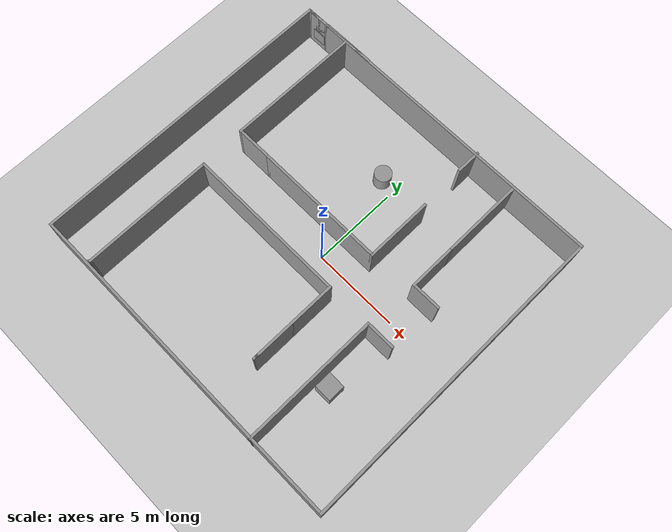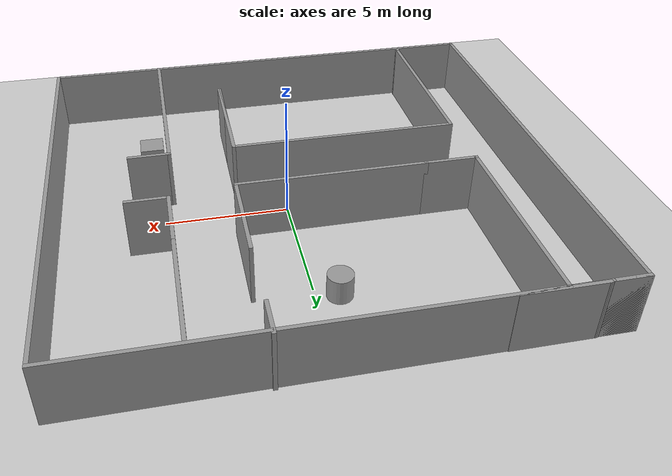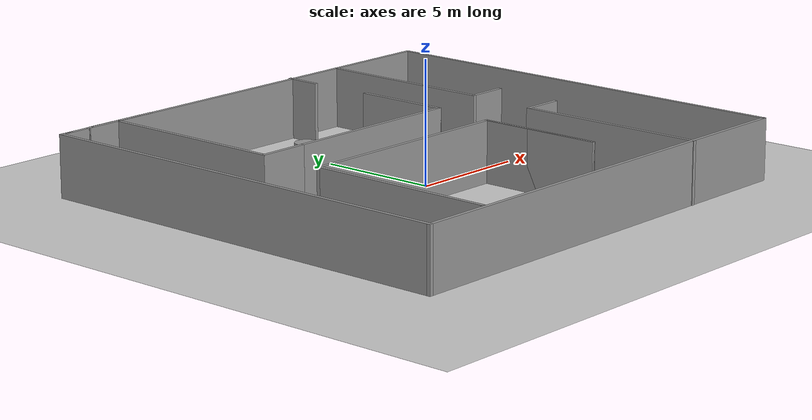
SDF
<sdf version="1.7">
 <world name="default">
  <light name="sun" type="directional">
   <pose>0 0 10 0 -0 0</pose>
   <diffuse>0.8 0.8 0.8 1</diffuse>
   <specular>0.2 0.2 0.2 1</specular>
   <attenuation>
    <range>1000</range>
    <constant>0.9</constant>
    <linear>0.01</linear>
    <quadratic>0.001</quadratic>
   </attenuation>
   <direction>-0.5 0.1 -0.9</direction>
   <spot><inner_angle>0</inner_angle><outer_angle>0</outer_angle><falloff>0</falloff></spot>
  </light>
  <model name="ground_plane">
   <static>1</static>
   <link name="link">
    <collision name="collision">
     <geometry><plane><normal>0 0 1</normal><size>100 100</size></plane></geometry>
     <surface><friction><ode><mu>100</mu><mu2>50</mu2></ode></friction></surface>
    </collision>
    <visual name="visual">
     <cast_shadows>0</cast_shadows>
     <geometry><plane><normal>0 0 1</normal><size>100 100</size></plane></geometry>
     <material>
      <script><uri>file://media/materials/scripts/gazebo.material</uri><name>Gazebo/Grey</name></script>
     </material>
    </visual>
   </link>
  </model>
  <gravity>0 0 -9.8</gravity>
  <magnetic_field>6e-06 2.3e-05 -4.2e-05</magnetic_field>
  <atmosphere type="adiabatic"/>
  <physics type="ode">
   <max_step_size>0.001</max_step_size>
   <real_time_factor>1</real_time_factor>
   <real_time_update_rate>1000</real_time_update_rate>
  </physics>
  <scene><ambient>0.4 0.4 0.4 1</ambient><background>0.7 0.7 0.7 1</background><shadows>1</shadows></scene>
  <audio><device>default</device></audio>
  <spherical_coordinates>
   <surface_model>EARTH_WGS84</surface_model>
   <latitude_deg>0</latitude_deg>
   <longitude_deg>0</longitude_deg>
   <elevation>0</elevation>
   <heading_deg>0</heading_deg>
  </spherical_coordinates>
  <model name="labroom">
   <pose>-0.522275 0.009464 0 0 -0 0</pose>
   <link name="Wall_11">
    <collision name="Wall_11_Collision">
     <geometry><box><size>3 0.15 2.5</size></box></geometry>
     <pose>0 0 1.25 0 -0 0</pose>
    </collision>
    <visual name="Wall_11_Visual">
     <pose>0 0 1.25 0 -0 0</pose>
     <geometry><box><size>3 0.15 2.5</size></box></geometry>
     <material>
      <script><uri>file://media/materials/scripts/gazebo.material</uri><name>Gazebo/Grey</name></script>
      <ambient>1 1 1 1</ambient>
     </material>
     <meta><layer>0</layer></meta>
    </visual>
    <pose>-8.375 9.14288 0 0 -0 0</pose>
   </link>
   <link name="Wall_12">
    <collision name="Wall_12_Collision">
     <geometry><box><size>8 0.15 2.5</size></box></geometry>
     <pose>0 0 1.25 0 -0 0</pose>
    </collision>
    <visual name="Wall_12_Visual">
     <pose>0 0 1.25 0 -0 0</pose>
     <geometry><box><size>8 0.15 2.5</size></box></geometry>
     <material>
      <script><uri>file://media/materials/scripts/gazebo.material</uri><name>Gazebo/Grey</name></script>
      <ambient>1 1 1 1</ambient>
     </material>
     <meta><layer>0</layer></meta>
    </visual>
    <pose>-6.95 5.21788 0 0 -0 -1.5708</pose>
   </link>
   <link name="Wall_13">
    <collision name="Wall_13_Collision">
     <geometry><box><size>2.25 0.15 2.5</size></box></geometry>
     <pose>0 0 1.25 0 -0 0</pose>
    </collision>
    <visual name="Wall_13_Visual">
     <pose>0 0 1.25 0 -0 0</pose>
     <geometry><box><size>2.25 0.15 2.5</size></box></geometry>
     <material>
      <script><uri>file://media/materials/scripts/gazebo.material</uri><name>Gazebo/Grey</name></script>
      <ambient>1 1 1 1</ambient>
     </material>
     <meta><layer>0</layer></meta>
    </visual>
    <pose>-5.9 1.29288 0 0 -0 0</pose>
   </link>
   <link name="Wall_14">
    <collision name="Wall_14_Collision">
     <geometry><box><size>7.75 0.15 2.5</size></box></geometry>
     <pose>0 0 1.25 0 -0 0</pose>
    </collision>
    <visual name="Wall_14_Visual">
     <pose>0 0 1.25 0 -0 0</pose>
     <geometry><box><size>7.75 0.15 2.5</size></box></geometry>
     <material>
      <script><uri>file://media/materials/scripts/gazebo.material</uri><name>Gazebo/Grey</name></script>
      <ambient>1 1 1 1</ambient>
     </material>
     <meta><layer>0</layer></meta>
    </visual>
    <pose>-1.05 1.29288 0 0 -0 0</pose>
   </link>
   <link name="Wall_15">
    <collision name="Wall_15_Collision">
     <geometry><box><size>4 0.15 2.5</size></box></geometry>
     <pose>0 0 1.25 0 -0 0</pose>
    </collision>
    <visual name="Wall_15_Visual">
     <pose>0 0 1.25 0 -0 0</pose>
     <geometry><box><size>4 0.15 2.5</size></box></geometry>
     <material>
      <script><uri>file://media/materials/scripts/gazebo.material</uri><name>Gazebo/Grey</name></script>
      <ambient>1 1 1 1</ambient>
     </material>
     <meta><layer>0</layer></meta>
    </visual>
    <pose>2.75 3.21788 0 0 -0 1.5708</pose>
   </link>
   <link name="Wall_17">
    <collision name="Wall_17_Collision">
     <geometry><box><size>1.5 0.15 2.5</size></box></geometry>
     <pose>0 0 1.25 0 -0 0</pose>
    </collision>
    <visual name="Wall_17_Visual">
     <pose>0 0 1.25 0 -0 0</pose>
     <geometry><box><size>1.5 0.15 2.5</size></box></geometry>
     <material>
      <script><uri>file://media/materials/scripts/gazebo.material</uri><name>Gazebo/Grey</name></script>
      <ambient>1 1 1 1</ambient>
     </material>
     <meta><layer>0</layer></meta>
    </visual>
    <pose>2.66692 8.55975 0 0 -0 -1.5708</pose>
   </link>
   <link name="Wall_19">
    <collision name="Wall_19_Collision">
     <geometry><box><size>5.25 0.15 2.5</size></box></geometry>
     <pose>0 0 1.25 0 -0 0</pose>
    </collision>
    <visual name="Wall_19_Visual">
     <pose>0 0 1.25 0 -0 0</pose>
     <geometry><box><size>5.25 0.15 2.5</size></box></geometry>
     <material>
      <script><uri>file://media/materials/scripts/gazebo.material</uri><name>Gazebo/Grey</name></script>
      <ambient>1 1 1 1</ambient>
     </material>
     <meta><layer>0</layer></meta>
    </visual>
    <pose>2.47453 -3.96669 0 0 -0 -1.5708</pose>
   </link>
   <link name="Wall_20">
    <collision name="Wall_20_Collision">
     <geometry><box><size>5.25 0.15 2.5</size></box></geometry>
     <pose>0 0 1.25 0 -0 0</pose>
    </collision>
    <visual name="Wall_20_Visual">
     <pose>0 0 1.25 0 -0 0</pose>
     <geometry><box><size>5.25 0.15 2.5</size></box></geometry>
     <material>
      <script><uri>file://media/materials/scripts/gazebo.material</uri><name>Gazebo/Grey</name></script>
      <ambient>1 1 1 1</ambient>
     </material>
     <meta><layer>0</layer></meta>
    </visual>
    <pose>2.47453 -3.96669 0 0 -0 1.5708</pose>
   </link>
   <link name="Wall_21">
    <collision name="Wall_21_Collision">
     <geometry><box><size>9.5 0.15 2.5</size></box></geometry>
     <pose>0 0 1.25 0 -0 0</pose>
    </collision>
    <visual name="Wall_21_Visual">
     <pose>0 0 1.25 0 -0 0</pose>
     <geometry><box><size>9.5 0.15 2.5</size></box></geometry>
     <material>
      <script><uri>file://media/materials/scripts/gazebo.material</uri><name>Gazebo/Grey</name></script>
      <ambient>1 1 1 1</ambient>
     </material>
     <meta><layer>0</layer></meta>
    </visual>
    <pose>-2.20047 -1.41669 0 0 -0 3.14159</pose>
   </link>
   <link name="Wall_22">
    <collision name="Wall_22_Collision">
     <geometry><box><size>7.75 0.15 2.5</size></box></geometry>
     <pose>0 0 1.25 0 -0 0</pose>
    </collision>
    <visual name="Wall_22_Visual">
     <pose>0 0 1.25 0 -0 0</pose>
     <geometry><box><size>7.75 0.15 2.5</size></box></geometry>
     <material>
      <script><uri>file://media/materials/scripts/gazebo.material</uri><name>Gazebo/Grey</name></script>
      <ambient>1 1 1 1</ambient>
     </material>
     <meta><layer>0</layer></meta>
    </visual>
    <pose>-6.87547 -5.21669 0 0 -0 -1.5708</pose>
   </link>
   <link name="Wall_23">
    <collision name="Wall_23_Collision">
     <geometry><box><size>0.25 0.15 2.5</size></box></geometry>
     <pose>0 0 1.25 0 -0 0</pose>
    </collision>
    <visual name="Wall_23_Visual">
     <pose>0 0 1.25 0 -0 0</pose>
     <geometry><box><size>0.25 0.15 2.5</size></box></geometry>
     <material>
      <script><uri>file://media/materials/scripts/gazebo.material</uri><name>Gazebo/Grey</name></script>
      <ambient>1 1 1 1</ambient>
     </material>
     <meta><layer>0</layer></meta>
    </visual>
    <pose>-6.90047 -9.06 0 0 -0 -2.0944</pose>
   </link>
   <link name="Wall_25">
    <collision name="Wall_25_Collision">
     <geometry><box><size>5 0.15 2.5</size></box></geometry>
     <pose>0 0 1.25 0 -0 0</pose>
    </collision>
    <visual name="Wall_25_Visual">
     <pose>0 0 1.25 0 -0 0</pose>
     <geometry><box><size>5 0.15 2.5</size></box></geometry>
     <material>
      <script><uri>file://media/materials/scripts/gazebo.material</uri><name>Gazebo/Grey</name></script>
      <ambient>1 1 1 1</ambient>
     </material>
     <meta><layer>0</layer></meta>
    </visual>
    <pose>5.30792 6.66983 0 0 -0 -1.5708</pose>
   </link>
   <link name="Wall_26">
    <collision name="Wall_26_Collision">
     <geometry><box><size>2.75 0.15 2.5</size></box></geometry>
     <pose>0 0 1.25 0 -0 0</pose>
    </collision>
    <visual name="Wall_26_Visual">
     <pose>0 0 1.25 0 -0 0</pose>
     <geometry><box><size>2.75 0.15 2.5</size></box></geometry>
     <material>
      <script><uri>file://media/materials/scripts/gazebo.material</uri><name>Gazebo/Grey</name></script>
      <ambient>1 1 1 1</ambient>
     </material>
     <meta><layer>0</layer></meta>
    </visual>
    <pose>5.30792 2.94483 0 0 -0 -1.5708</pose>
   </link>
   <link name="Wall_27">
    <collision name="Wall_27_Collision">
     <geometry><box><size>1.75 0.15 2.5</size></box></geometry>
     <pose>0 0 1.25 0 -0 0</pose>
    </collision>
    <visual name="Wall_27_Visual">
     <pose>0 0 1.25 0 -0 0</pose>
     <geometry><box><size>1.75 0.15 2.5</size></box></geometry>
     <material>
      <script><uri>file://media/materials/scripts/gazebo.material</uri><name>Gazebo/Grey</name></script>
      <ambient>1 1 1 1</ambient>
     </material>
     <meta><layer>0</layer></meta>
    </visual>
    <pose>6.10792 1.64483 0 0 -0 0</pose>
   </link>
   <link name="Wall_29">
    <collision name="Wall_29_Collision">
     <geometry><box><size>8 0.15 2.5</size></box></geometry>
     <pose>0 0 1.25 0 -0 0</pose>
    </collision>
    <visual name="Wall_29_Visual">
     <pose>0 0 1.25 0 -0 0</pose>
     <geometry><box><size>8 0.15 2.5</size></box></geometry>
     <material>
      <script><uri>file://media/materials/scripts/gazebo.material</uri><name>Gazebo/Grey</name></script>
      <ambient>1 1 1 1</ambient>
     </material>
     <meta><layer>0</layer></meta>
    </visual>
    <pose>5.09804 -5.30975 0 0 -0 1.5708</pose>
   </link>
   <link name="Wall_3">
    <collision name="Wall_3_Collision">
     <geometry><box><size>19.5 0.15 2.5</size></box></geometry>
     <pose>0 0 1.25 0 -0 0</pose>
    </collision>
    <visual name="Wall_3_Visual">
     <pose>0 0 1.25 0 -0 0</pose>
     <geometry><box><size>19.5 0.15 2.5</size></box></geometry>
     <material>
      <script><uri>file://media/materials/scripts/gazebo.material</uri><name>Gazebo/Grey</name></script>
      <ambient>1 1 1 1</ambient>
     </material>
     <meta><layer>0</layer></meta>
    </visual>
    <pose>0.125 9.14288 0 0 -0 0</pose>
   </link>
   <link name="Wall_30">
    <collision name="Wall_30_Collision">
     <geometry><box><size>1.75 0.15 2.5</size></box></geometry>
     <pose>0 0 1.25 0 -0 0</pose>
    </collision>
    <visual name="Wall_30_Visual">
     <pose>0 0 1.25 0 -0 0</pose>
     <geometry><box><size>1.75 0.15 2.5</size></box></geometry>
     <material>
      <script><uri>file://media/materials/scripts/gazebo.material</uri><name>Gazebo/Grey</name></script>
      <ambient>1 1 1 1</ambient>
     </material>
     <meta><layer>0</layer></meta>
    </visual>
    <pose>5.89804 -1.38475 0 0 -0 0</pose>
   </link>
   <link name="Wall_4">
    <collision name="Wall_4_Collision">
     <geometry><box><size>18.5 0.15 2.5</size></box></geometry>
     <pose>0 0 1.25 0 -0 0</pose>
    </collision>
    <visual name="Wall_4_Visual">
     <pose>0 0 1.25 0 -0 0</pose>
     <geometry><box><size>18.5 0.15 2.5</size></box></geometry>
     <material>
      <script><uri>file://media/materials/scripts/gazebo.material</uri><name>Gazebo/Grey</name></script>
      <ambient>1 1 1 1</ambient>
     </material>
     <meta><layer>0</layer></meta>
    </visual>
    <pose>9.8 -0.032124 0 0 -0 -1.5708</pose>
   </link>
   <link name="Wall_5">
    <collision name="Wall_5_Collision">
     <geometry><box><size>19.75 0.15 2.5</size></box></geometry>
     <pose>0 0 1.25 0 -0 0</pose>
    </collision>
    <visual name="Wall_5_Visual">
     <pose>0 0 1.25 0 -0 0</pose>
     <geometry><box><size>19.75 0.15 2.5</size></box></geometry>
     <material>
      <script><uri>file://media/materials/scripts/gazebo.material</uri><name>Gazebo/Grey</name></script>
      <ambient>1 1 1 1</ambient>
     </material>
     <meta><layer>0</layer></meta>
    </visual>
    <pose>0 -9.20712 0 0 -0 3.14159</pose>
   </link>
   <link name="Wall_6">
    <collision name="Wall_6_Collision">
     <geometry><box><size>18.5 0.15 2.5</size></box></geometry>
     <pose>0 0 1.25 0 -0 0</pose>
    </collision>
    <visual name="Wall_6_Visual">
     <pose>0 0 1.25 0 -0 0</pose>
     <geometry><box><size>18.5 0.15 2.5</size></box></geometry>
     <material>
      <script><uri>file://media/materials/scripts/gazebo.material</uri><name>Gazebo/Grey</name></script>
      <ambient>1 1 1 1</ambient>
     </material>
     <meta><layer>0</layer></meta>
    </visual>
    <pose>-9.8 -0.032124 0 0 -0 1.5708</pose>
   </link>
   <link name="Wall_7">
    <collision name="Wall_7_Collision">
     <geometry><box><size>1.5 0.15 2.5</size></box></geometry>
     <pose>0 0 1.25 0 -0 0</pose>
    </collision>
    <visual name="Wall_7_Visual">
     <pose>0 0 1.25 0 -0 0</pose>
     <geometry><box><size>1.5 0.15 2.5</size></box></geometry>
     <material>
      <script><uri>file://media/materials/scripts/gazebo.material</uri><name>Gazebo/Grey</name></script>
      <ambient>1 1 1 1</ambient>
     </material>
     <meta><layer>0</layer></meta>
    </visual>
    <pose>-9.125 9.14288 0 0 -0 0</pose>
   </link>
   <link name="Wall_8">
    <collision name="Wall_8_Collision">
     <geometry><box><size>0.25 0.15 2.5</size></box></geometry>
     <pose>0 0 1.25 0 -0 0</pose>
    </collision>
    <visual name="Wall_8_Visual">
     <pose>0 0 1.25 0 -0 0</pose>
     <geometry><box><size>0.25 0.15 2.5</size></box></geometry>
     <material>
      <script><uri>file://media/materials/scripts/gazebo.material</uri><name>Gazebo/Grey</name></script>
      <ambient>1 1 1 1</ambient>
     </material>
     <meta><layer>0</layer></meta>
    </visual>
    <pose>-8.4017 9.15582 0 0 -0 0.261799</pose>
   </link>
   <link name="Wall_9">
    <collision name="Wall_9_Collision">
     <geometry><box><size>3.25 0.15 2.5</size></box></geometry>
     <pose>0 0 1.25 0 -0 0</pose>
    </collision>
    <visual name="Wall_9_Visual">
     <pose>0 0 1.25 0 -0 0</pose>
     <geometry><box><size>3.25 0.15 2.5</size></box></geometry>
     <material>
      <script><uri>file://media/materials/scripts/gazebo.material</uri><name>Gazebo/Grey</name></script>
      <ambient>1 1 1 1</ambient>
     </material>
     <meta><layer>0</layer></meta>
    </visual>
    <pose>-6.80341 9.16876 0 0 -0 0</pose>
   </link>
   <link name="Window_0">
    <collision name="Window_0_Collision">
     <geometry><box><size>0.8 0.17 0.8</size></box></geometry>
     <pose>0 0 0.4 0 -0 0</pose>
    </collision>
    <visual name="Window_0_Visual">
     <pose>0 0 0.4 0 -0 0</pose>
     <geometry><box><size>0.8 0.17 0.8</size></box></geometry>
     <material>
      <script><uri>file://media/materials/scripts/gazebo.material</uri><name>Gazebo/Grey</name></script>
     </material>
    </visual>
    <pose>-8.93 9.11288 0.5 0 -0 0</pose>
   </link>
   <static>1</static>
  </model>
  <model name="unit_cylinder">
   <pose>-0.891086 5.46894 0.499993 -3e-06 -4e-06 -0</pose>
   <link name="link">
    <inertial>
     <mass>1</mass>
     <inertia><ixx>0.145833</ixx><ixy>0</ixy><ixz>0</ixz><iyy>0.145833</iyy><iyz>0</iyz><izz>0.125</izz></inertia>
    </inertial>
    <collision name="collision">
     <geometry><cylinder><radius>0.5</radius><length>1</length></cylinder></geometry>
    </collision>
    <visual name="visual">
     <geometry><cylinder><radius>0.5</radius><length>1</length></cylinder></geometry>
     <material>
      <script><name>Gazebo/Grey</name><uri>file://media/materials/scripts/gazebo.material</uri></script>
     </material>
    </visual>
   </link>
  </model>
  <model name="unit_box">
   <pose>5.2715 -4.66663 0.5 0 -0 0</pose>
   <link name="link">
    <inertial>
     <mass>1</mass>
     <inertia>
      <ixx>0.166667</ixx>
      <ixy>0</ixy>
      <ixz>0</ixz>
      <iyy>0.166667</iyy>
      <iyz>0</iyz>
      <izz>0.166667</izz>
     </inertia>
    </inertial>
    <collision name="collision"><geometry><box><size>1 1 1</size></box></geometry></collision>
    <visual name="visual">
     <geometry><box><size>1 1 1</size></box></geometry>
     <material>
      <script><name>Gazebo/Grey</name><uri>file://media/materials/scripts/gazebo.material</uri></script>
     </material>
    </visual>
   </link>
  </model>
 </world>
</sdf>
